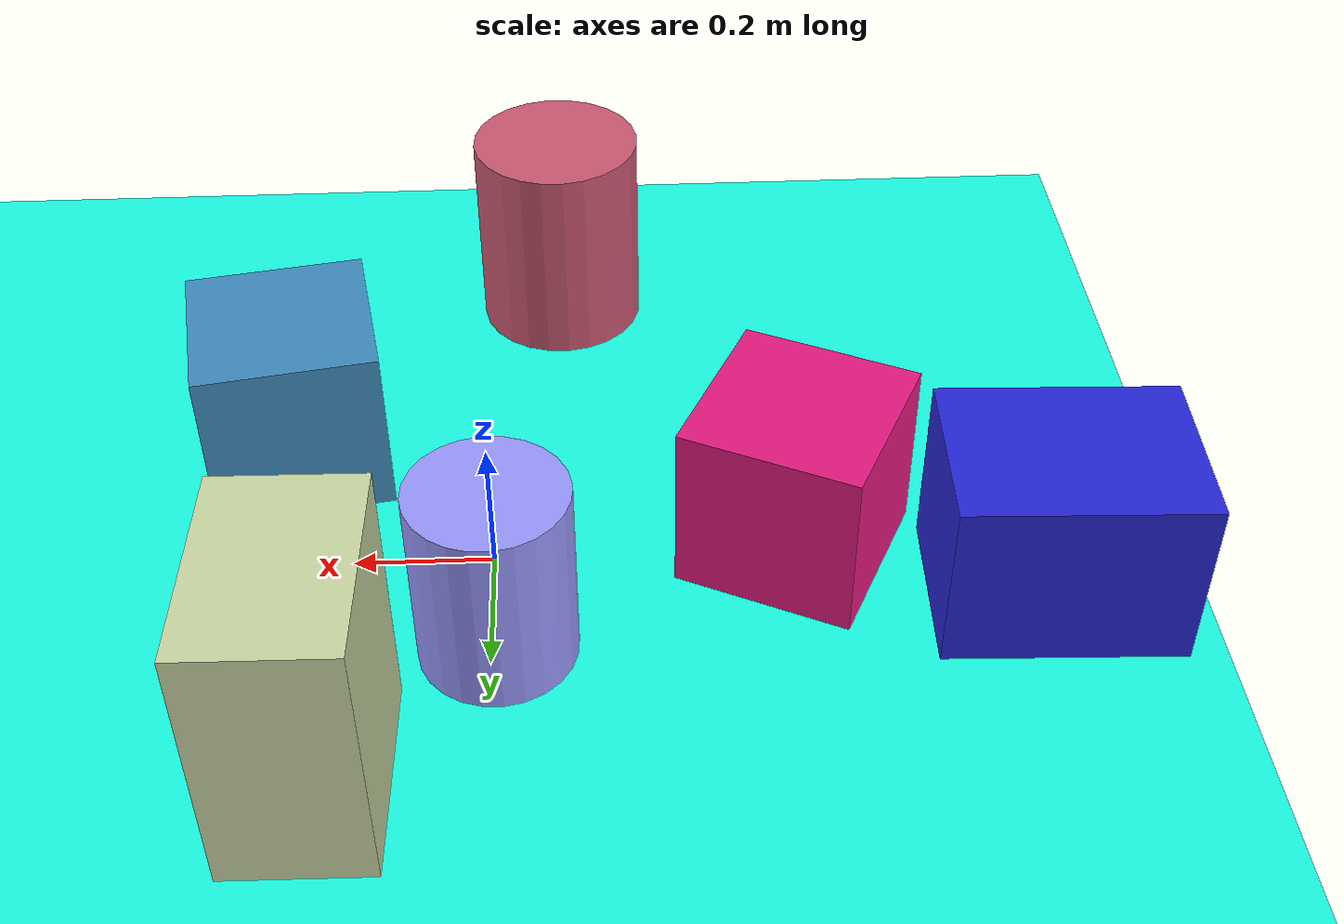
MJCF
<mujoco>
   <asset>
<texture type="skybox" builtin="gradient" rgb1="0.7 0.7 0.6" rgb2="1.0 0.3 0.0" width="500" height="500"/>
<texture name="checker_0" builtin="checker" rgb1="0.0 0.9 0.7" rgb2="0.5 0.2 0.8" width="500" height="500"/>
<texture name="gradient_1" builtin="gradient" rgb1="1.0 0.1 0.4" rgb2="0.6 0.6 0.5" width="500" height="500"/>
<texture name="gradient_2" builtin="gradient" rgb1="0.6 0.9 0.9" rgb2="1.0 0.8 0.4" width="500" height="500"/>
<texture name="gradient_3" builtin="gradient" rgb1="0.3 0.1 0.8" rgb2="0.0 0.2 0.9" width="500" height="500"/>
<texture name="gradient_4" builtin="gradient" rgb1="0.4 0.6 1.0" rgb2="0.8 0.6 1.0" width="500" height="500"/>
<texture name="flat_5" builtin="flat" rgb1="0.9 0.1 0.5" rgb2="0.9 0.1 0.5"  width="500" height="500"/><material name="checker_0_mat" reflectance="0.9861276693418582" texrepeat="6 6" texture="checker_0" texuniform="false" />
<material name="gradient_1_mat" reflectance="0.6296992439941306" texture="gradient_1" texuniform="true"/>
<material name="gradient_2_mat" reflectance="0.1799285237509307" texture="gradient_2" texuniform="true"/>
<material name="gradient_3_mat" reflectance="0.9621566399404856" texture="gradient_3" texuniform="true"/>
<material name="gradient_4_mat" reflectance="0.649900878027829" texture="gradient_4" texuniform="true"/>
<material name="flat_5_mat" reflectance="0.4068119993533552" texture="flat_5" texuniform="true"/>
   </asset>

   <worldbody>
     <geom type="plane" size="1 1 0.1" rgba="0.1 1.0 0.9 1" />
<light pos="0.04471572764984755 -0.41494811410815613 2" dir="0 0 -1" cutoff="90" diffuse="1 1 1" specular="1 1 1"/>
<geom type="box" pos="0.3 -0.24 0.13" size="0.13 0.13 0.13" material="checker_0_mat" euler="0 0 10" />
<geom type="cylinder" pos="-0.1 -0.62 0.16" size="0.13 0.16 0.16" material="gradient_1_mat" euler="0 0 35" />
<geom type="box" pos="0.22 0.39 0.19" size="0.15 0.1 0.19" material="gradient_2_mat" euler="0 0 89" />
<geom type="box" pos="-0.78 0.1 0.13" size="0.13 0.17 0.13" material="gradient_3_mat" euler="0 0 88" />
<geom type="cylinder" pos="-0.01 0.17 0.14" size="0.11 0.14 0.14" material="gradient_4_mat" euler="0 0 80" />
<geom type="box" pos="-0.43 -0.01 0.13" size="0.13 0.13 0.13" material="flat_5_mat" euler="0 0 64" /><camera euler="60 0 180" fovy="60" name="camera1" pos="-0.2 -1.5 1"></camera>   </worldbody>
   <visual>
      <headlight diffuse="0.7 0.7 0.7"/>
   </visual>
</mujoco>
